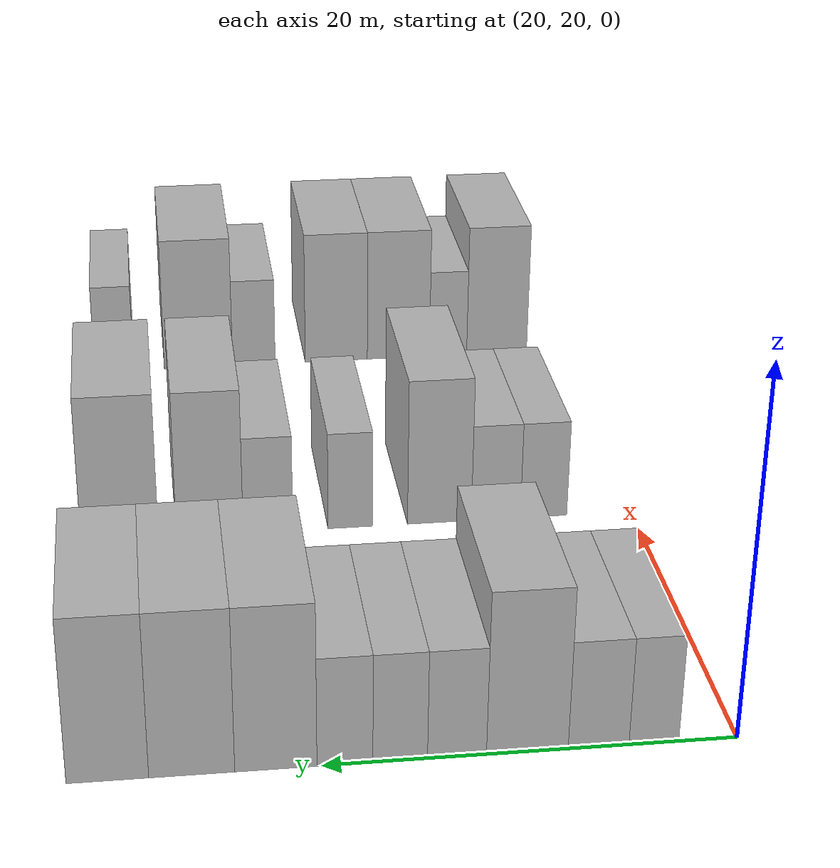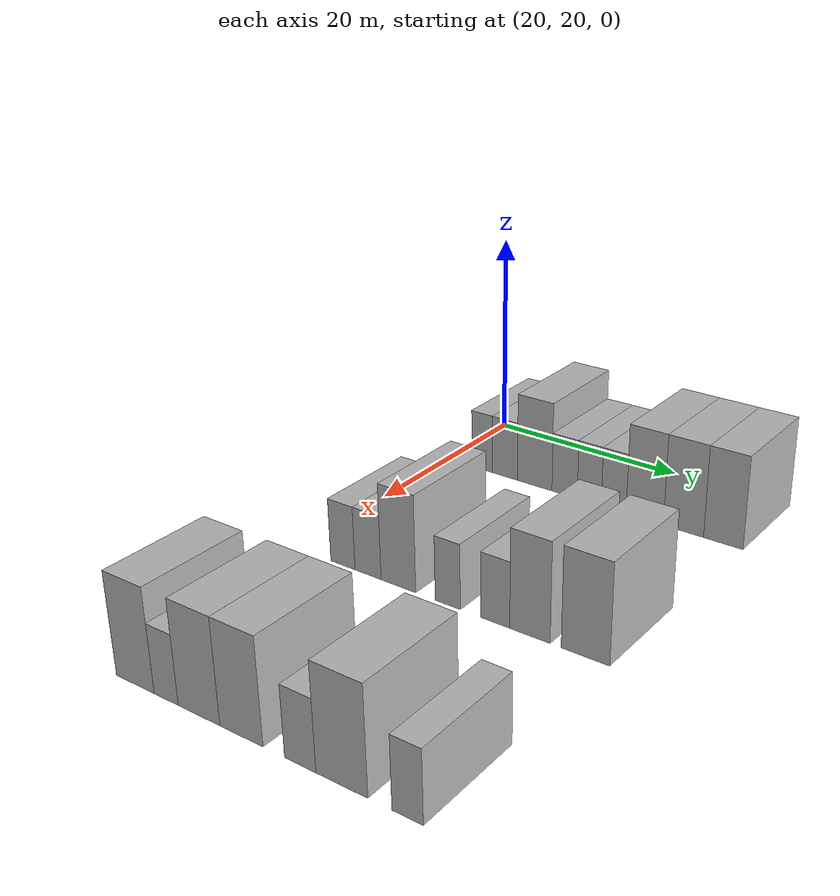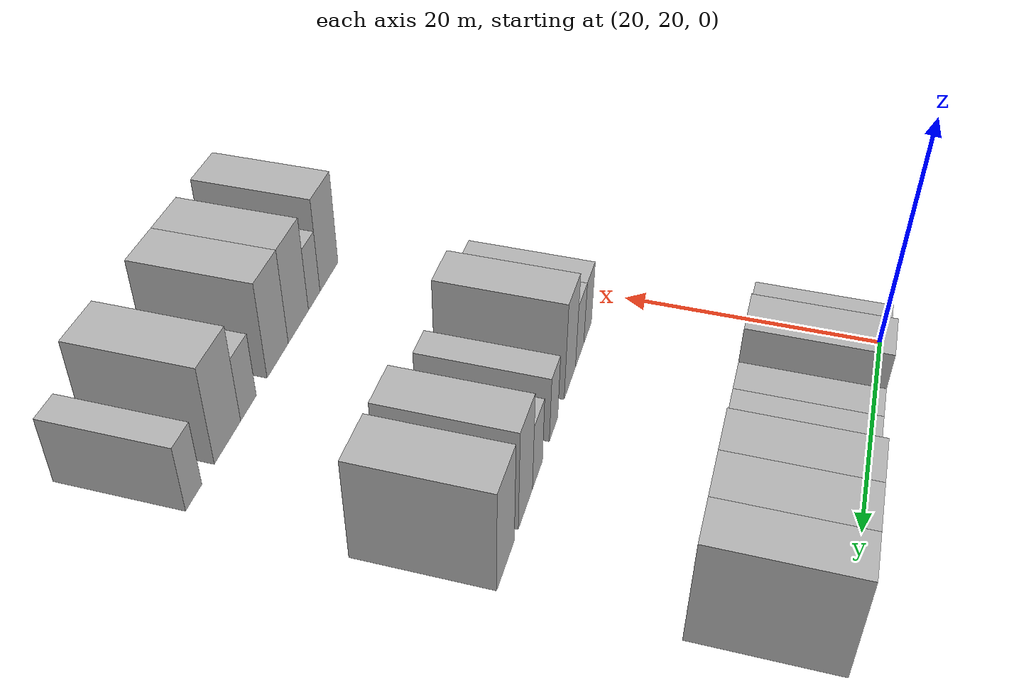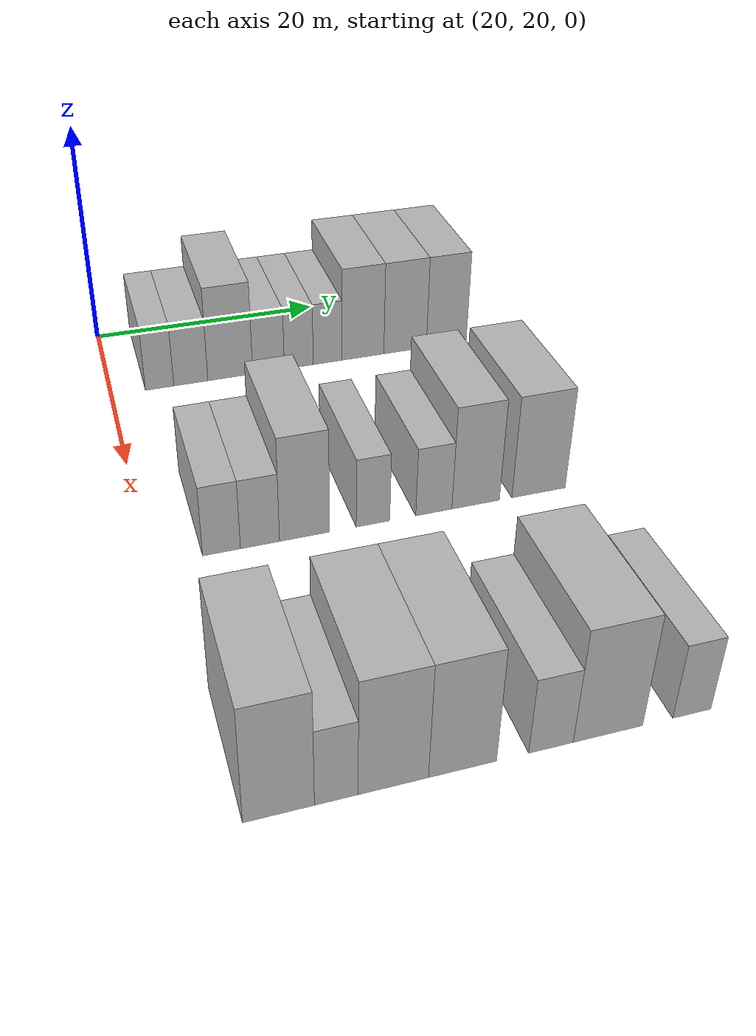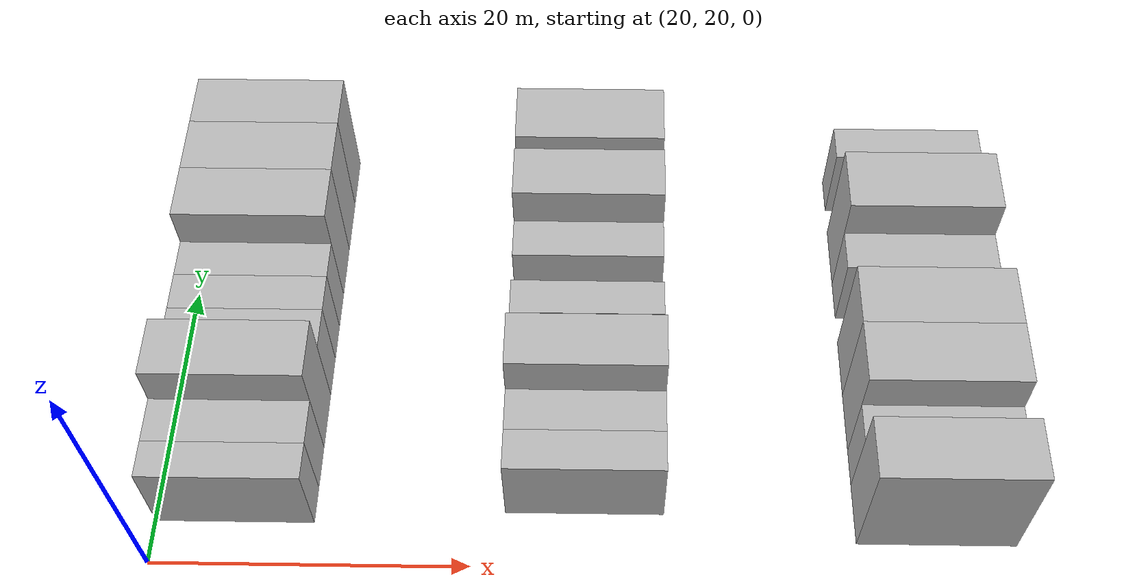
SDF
<sdf version="1.6">
 <world name="default">
  <model name="building_71">
   <static>1</static>
   <pose>25.0000 24.0791 0 0.000000 0.000000 0.000000</pose>
   <link name="link">
    <pose>0 0 3.00 0 0 0</pose>
    <collision name="collision"><geometry><box><size>10.0000 2.4249 6.0000</size></box></geometry></collision>
    <visual name="visual">
     <cast_shadows>0</cast_shadows>
     <geometry><box><size>10.0000 2.4249 6.0000</size></box></geometry>
     <material>
      <script>
       <uri>model://HANNAS_wall/materials/scripts</uri>
       <uri>model://HANNAS_wall/materials/textures</uri>
       <name>vrc/HANNAS_wall</name>
      </script>
     </material>
    </visual>
   </link>
  </model>
  <model name="building_72">
   <static>1</static>
   <pose>25.0000 26.7644 0 0.000000 0.000000 0.000000</pose>
   <link name="link">
    <pose>0 0 3.00 0 0 0</pose>
    <collision name="collision"><geometry><box><size>10.0000 2.9459 6.0000</size></box></geometry></collision>
    <visual name="visual">
     <cast_shadows>0</cast_shadows>
     <geometry><box><size>10.0000 2.9459 6.0000</size></box></geometry>
     <material>
      <script>
       <uri>model://HANNAS_wall/materials/scripts</uri>
       <uri>model://HANNAS_wall/materials/textures</uri>
       <name>vrc/HANNAS_wall</name>
      </script>
     </material>
    </visual>
   </link>
  </model>
  <model name="building_73">
   <static>1</static>
   <pose>25.0000 30.2026 0 0.000000 0.000000 0.000000</pose>
   <link name="link">
    <pose>0 0 4.50 0 0 0</pose>
    <collision name="collision"><geometry><box><size>10.0000 3.9305 9.0000</size></box></geometry></collision>
    <visual name="visual">
     <cast_shadows>0</cast_shadows>
     <geometry><box><size>10.0000 3.9305 9.0000</size></box></geometry>
     <material>
      <script>
       <uri>model://HANNAS_wall/materials/scripts</uri>
       <uri>model://HANNAS_wall/materials/textures</uri>
       <name>vrc/HANNAS_wall</name>
      </script>
     </material>
    </visual>
   </link>
  </model>
  <model name="building_74">
   <static>1</static>
   <pose>25.0000 33.5759 0 0.000000 0.000000 0.000000</pose>
   <link name="link">
    <pose>0 0 3.00 0 0 0</pose>
    <collision name="collision"><geometry><box><size>10.0000 2.8161 6.0000</size></box></geometry></collision>
    <visual name="visual">
     <cast_shadows>0</cast_shadows>
     <geometry><box><size>10.0000 2.8161 6.0000</size></box></geometry>
     <material>
      <script>
       <uri>model://HANNAS_wall/materials/scripts</uri>
       <uri>model://HANNAS_wall/materials/textures</uri>
       <name>vrc/HANNAS_wall</name>
      </script>
     </material>
    </visual>
   </link>
  </model>
  <model name="building_75">
   <static>1</static>
   <pose>25.0000 36.2824 0 0.000000 0.000000 0.000000</pose>
   <link name="link">
    <pose>0 0 3.00 0 0 0</pose>
    <collision name="collision"><geometry><box><size>10.0000 2.5968 6.0000</size></box></geometry></collision>
    <visual name="visual">
     <cast_shadows>0</cast_shadows>
     <geometry><box><size>10.0000 2.5968 6.0000</size></box></geometry>
     <material>
      <script>
       <uri>model://HANNAS_wall/materials/scripts</uri>
       <uri>model://HANNAS_wall/materials/textures</uri>
       <name>vrc/HANNAS_wall</name>
      </script>
     </material>
    </visual>
   </link>
  </model>
  <model name="building_76">
   <static>1</static>
   <pose>25.0000 38.9004 0 0.000000 0.000000 0.000000</pose>
   <link name="link">
    <pose>0 0 3.00 0 0 0</pose>
    <collision name="collision"><geometry><box><size>10.0000 2.6391 6.0000</size></box></geometry></collision>
    <visual name="visual">
     <cast_shadows>0</cast_shadows>
     <geometry><box><size>10.0000 2.6391 6.0000</size></box></geometry>
     <material>
      <script>
       <uri>model://HANNAS_wall/materials/scripts</uri>
       <uri>model://HANNAS_wall/materials/textures</uri>
       <name>vrc/HANNAS_wall</name>
      </script>
     </material>
    </visual>
   </link>
  </model>
  <model name="building_77">
   <static>1</static>
   <pose>25.0000 42.1484 0 0.000000 0.000000 0.000000</pose>
   <link name="link">
    <pose>0 0 4.50 0 0 0</pose>
    <collision name="collision"><geometry><box><size>10.0000 3.8569 9.0000</size></box></geometry></collision>
    <visual name="visual">
     <cast_shadows>0</cast_shadows>
     <geometry><box><size>10.0000 3.8569 9.0000</size></box></geometry>
     <material>
      <script>
       <uri>model://HANNAS_wall/materials/scripts</uri>
       <uri>model://HANNAS_wall/materials/textures</uri>
       <name>vrc/HANNAS_wall</name>
      </script>
     </material>
    </visual>
   </link>
  </model>
  <model name="building_78">
   <static>1</static>
   <pose>25.0000 46.0795 0 0.000000 0.000000 0.000000</pose>
   <link name="link">
    <pose>0 0 4.50 0 0 0</pose>
    <collision name="collision"><geometry><box><size>10.0000 4.0053 9.0000</size></box></geometry></collision>
    <visual name="visual">
     <cast_shadows>0</cast_shadows>
     <geometry><box><size>10.0000 4.0053 9.0000</size></box></geometry>
     <material>
      <script>
       <uri>model://HANNAS_wall/materials/scripts</uri>
       <uri>model://HANNAS_wall/materials/textures</uri>
       <name>vrc/HANNAS_wall</name>
      </script>
     </material>
    </visual>
   </link>
  </model>
  <model name="building_79">
   <static>1</static>
   <pose>25.0000 49.9900 0 0.000000 0.000000 0.000000</pose>
   <link name="link">
    <pose>0 0 4.50 0 0 0</pose>
    <collision name="collision"><geometry><box><size>10.0000 3.8157 9.0000</size></box></geometry></collision>
    <visual name="visual">
     <cast_shadows>0</cast_shadows>
     <geometry><box><size>10.0000 3.8157 9.0000</size></box></geometry>
     <material>
      <script>
       <uri>model://HANNAS_wall/materials/scripts</uri>
       <uri>model://HANNAS_wall/materials/textures</uri>
       <name>vrc/HANNAS_wall</name>
      </script>
     </material>
    </visual>
   </link>
  </model>
  <model name="building_192">
   <static>1</static>
   <pose>47.0000 25.0814 0 0.000000 0.000000 0.000000</pose>
   <link name="link">
    <pose>0 0 3.00 0 0 0</pose>
    <collision name="collision"><geometry><box><size>10.0000 2.6965 6.0000</size></box></geometry></collision>
    <visual name="visual">
     <cast_shadows>0</cast_shadows>
     <geometry><box><size>10.0000 2.6965 6.0000</size></box></geometry>
     <material>
      <script>
       <uri>model://HANNAS_wall/materials/scripts</uri>
       <uri>model://HANNAS_wall/materials/textures</uri>
       <name>vrc/HANNAS_wall</name>
      </script>
     </material>
    </visual>
   </link>
  </model>
  <model name="building_193">
   <static>1</static>
   <pose>47.0000 27.8460 0 0.000000 0.000000 0.000000</pose>
   <link name="link">
    <pose>0 0 3.00 0 0 0</pose>
    <collision name="collision"><geometry><box><size>10.0000 2.8327 6.0000</size></box></geometry></collision>
    <visual name="visual">
     <cast_shadows>0</cast_shadows>
     <geometry><box><size>10.0000 2.8327 6.0000</size></box></geometry>
     <material>
      <script>
       <uri>model://HANNAS_wall/materials/scripts</uri>
       <uri>model://HANNAS_wall/materials/textures</uri>
       <name>vrc/HANNAS_wall</name>
      </script>
     </material>
    </visual>
   </link>
  </model>
  <model name="building_194">
   <static>1</static>
   <pose>47.0000 31.0983 0 0.000000 0.000000 0.000000</pose>
   <link name="link">
    <pose>0 0 4.50 0 0 0</pose>
    <collision name="collision"><geometry><box><size>10.0000 3.6720 9.0000</size></box></geometry></collision>
    <visual name="visual">
     <cast_shadows>0</cast_shadows>
     <geometry><box><size>10.0000 3.6720 9.0000</size></box></geometry>
     <material>
      <script>
       <uri>model://HANNAS_wall/materials/scripts</uri>
       <uri>model://HANNAS_wall/materials/textures</uri>
       <name>vrc/HANNAS_wall</name>
      </script>
     </material>
    </visual>
   </link>
  </model>
  <model name="building_195">
   <static>1</static>
   <pose>47.0000 36.2042 0 0.000000 0.000000 0.000000</pose>
   <link name="link">
    <pose>0 0 3.00 0 0 0</pose>
    <collision name="collision"><geometry><box><size>10.0000 2.5398 6.0000</size></box></geometry></collision>
    <visual name="visual">
     <cast_shadows>0</cast_shadows>
     <geometry><box><size>10.0000 2.5398 6.0000</size></box></geometry>
     <material>
      <script>
       <uri>model://HANNAS_wall/materials/scripts</uri>
       <uri>model://HANNAS_wall/materials/textures</uri>
       <name>vrc/HANNAS_wall</name>
      </script>
     </material>
    </visual>
   </link>
  </model>
  <model name="building_196">
   <static>1</static>
   <pose>47.0000 40.8755 0 0.000000 0.000000 0.000000</pose>
   <link name="link">
    <pose>0 0 3.00 0 0 0</pose>
    <collision name="collision"><geometry><box><size>10.0000 2.8028 6.0000</size></box></geometry></collision>
    <visual name="visual">
     <cast_shadows>0</cast_shadows>
     <geometry><box><size>10.0000 2.8028 6.0000</size></box></geometry>
     <material>
      <script>
       <uri>model://HANNAS_wall/materials/scripts</uri>
       <uri>model://HANNAS_wall/materials/textures</uri>
       <name>vrc/HANNAS_wall</name>
      </script>
     </material>
    </visual>
   </link>
  </model>
  <model name="building_197">
   <static>1</static>
   <pose>47.0000 44.1578 0 0.000000 0.000000 0.000000</pose>
   <link name="link">
    <pose>0 0 4.50 0 0 0</pose>
    <collision name="collision"><geometry><box><size>10.0000 3.7619 9.0000</size></box></geometry></collision>
    <visual name="visual">
     <cast_shadows>0</cast_shadows>
     <geometry><box><size>10.0000 3.7619 9.0000</size></box></geometry>
     <material>
      <script>
       <uri>model://HANNAS_wall/materials/scripts</uri>
       <uri>model://HANNAS_wall/materials/textures</uri>
       <name>vrc/HANNAS_wall</name>
      </script>
     </material>
    </visual>
   </link>
  </model>
  <model name="building_198">
   <static>1</static>
   <pose>47.0000 49.1984 0 0.000000 0.000000 0.000000</pose>
   <link name="link">
    <pose>0 0 4.50 0 0 0</pose>
    <collision name="collision"><geometry><box><size>10.0000 4.3193 9.0000</size></box></geometry></collision>
    <visual name="visual">
     <cast_shadows>0</cast_shadows>
     <geometry><box><size>10.0000 4.3193 9.0000</size></box></geometry>
     <material>
      <script>
       <uri>model://HANNAS_wall/materials/scripts</uri>
       <uri>model://HANNAS_wall/materials/textures</uri>
       <name>vrc/HANNAS_wall</name>
      </script>
     </material>
    </visual>
   </link>
  </model>
  <model name="building_320">
   <static>1</static>
   <pose>69.0000 23.9214 0 0.000000 0.000000 0.000000</pose>
   <link name="link">
    <pose>0 0 4.50 0 0 0</pose>
    <collision name="collision"><geometry><box><size>10.0000 4.0549 9.0000</size></box></geometry></collision>
    <visual name="visual">
     <cast_shadows>0</cast_shadows>
     <geometry><box><size>10.0000 4.0549 9.0000</size></box></geometry>
     <material>
      <script>
       <uri>model://HANNAS_wall/materials/scripts</uri>
       <uri>model://HANNAS_wall/materials/textures</uri>
       <name>vrc/HANNAS_wall</name>
      </script>
     </material>
    </visual>
   </link>
  </model>
  <model name="building_321">
   <static>1</static>
   <pose>69.0000 27.1998 0 0.000000 0.000000 0.000000</pose>
   <link name="link">
    <pose>0 0 3.00 0 0 0</pose>
    <collision name="collision"><geometry><box><size>10.0000 2.5019 6.0000</size></box></geometry></collision>
    <visual name="visual">
     <cast_shadows>0</cast_shadows>
     <geometry><box><size>10.0000 2.5019 6.0000</size></box></geometry>
     <material>
      <script>
       <uri>model://HANNAS_wall/materials/scripts</uri>
       <uri>model://HANNAS_wall/materials/textures</uri>
       <name>vrc/HANNAS_wall</name>
      </script>
     </material>
    </visual>
   </link>
  </model>
  <model name="building_322">
   <static>1</static>
   <pose>69.0000 30.5377 0 0.000000 0.000000 0.000000</pose>
   <link name="link">
    <pose>0 0 4.50 0 0 0</pose>
    <collision name="collision"><geometry><box><size>10.0000 4.1740 9.0000</size></box></geometry></collision>
    <visual name="visual">
     <cast_shadows>0</cast_shadows>
     <geometry><box><size>10.0000 4.1740 9.0000</size></box></geometry>
     <material>
      <script>
       <uri>model://HANNAS_wall/materials/scripts</uri>
       <uri>model://HANNAS_wall/materials/textures</uri>
       <name>vrc/HANNAS_wall</name>
      </script>
     </material>
    </visual>
   </link>
  </model>
  <model name="building_323">
   <static>1</static>
   <pose>69.0000 34.6921 0 0.000000 0.000000 0.000000</pose>
   <link name="link">
    <pose>0 0 4.50 0 0 0</pose>
    <collision name="collision"><geometry><box><size>10.0000 4.1346 9.0000</size></box></geometry></collision>
    <visual name="visual">
     <cast_shadows>0</cast_shadows>
     <geometry><box><size>10.0000 4.1346 9.0000</size></box></geometry>
     <material>
      <script>
       <uri>model://HANNAS_wall/materials/scripts</uri>
       <uri>model://HANNAS_wall/materials/textures</uri>
       <name>vrc/HANNAS_wall</name>
      </script>
     </material>
    </visual>
   </link>
  </model>
  <model name="building_324">
   <static>1</static>
   <pose>69.0000 40.1665 0 0.000000 0.000000 0.000000</pose>
   <link name="link">
    <pose>0 0 3.00 0 0 0</pose>
    <collision name="collision"><geometry><box><size>10.0000 2.8142 6.0000</size></box></geometry></collision>
    <visual name="visual">
     <cast_shadows>0</cast_shadows>
     <geometry><box><size>10.0000 2.8142 6.0000</size></box></geometry>
     <material>
      <script>
       <uri>model://HANNAS_wall/materials/scripts</uri>
       <uri>model://HANNAS_wall/materials/textures</uri>
       <name>vrc/HANNAS_wall</name>
      </script>
     </material>
    </visual>
   </link>
  </model>
  <model name="building_325">
   <static>1</static>
   <pose>69.0000 43.8168 0 0.000000 0.000000 0.000000</pose>
   <link name="link">
    <pose>0 0 4.50 0 0 0</pose>
    <collision name="collision"><geometry><box><size>10.0000 4.4865 9.0000</size></box></geometry></collision>
    <visual name="visual">
     <cast_shadows>0</cast_shadows>
     <geometry><box><size>10.0000 4.4865 9.0000</size></box></geometry>
     <material>
      <script>
       <uri>model://HANNAS_wall/materials/scripts</uri>
       <uri>model://HANNAS_wall/materials/textures</uri>
       <name>vrc/HANNAS_wall</name>
      </script>
     </material>
    </visual>
   </link>
  </model>
  <model name="building_326">
   <static>1</static>
   <pose>69.0000 49.3330 0 0.000000 0.000000 0.000000</pose>
   <link name="link">
    <pose>0 0 3.00 0 0 0</pose>
    <collision name="collision"><geometry><box><size>10.0000 2.5461 6.0000</size></box></geometry></collision>
    <visual name="visual">
     <cast_shadows>0</cast_shadows>
     <geometry><box><size>10.0000 2.5461 6.0000</size></box></geometry>
     <material>
      <script>
       <uri>model://HANNAS_wall/materials/scripts</uri>
       <uri>model://HANNAS_wall/materials/textures</uri>
       <name>vrc/HANNAS_wall</name>
      </script>
     </material>
    </visual>
   </link>
  </model>
 </world>
</sdf>
